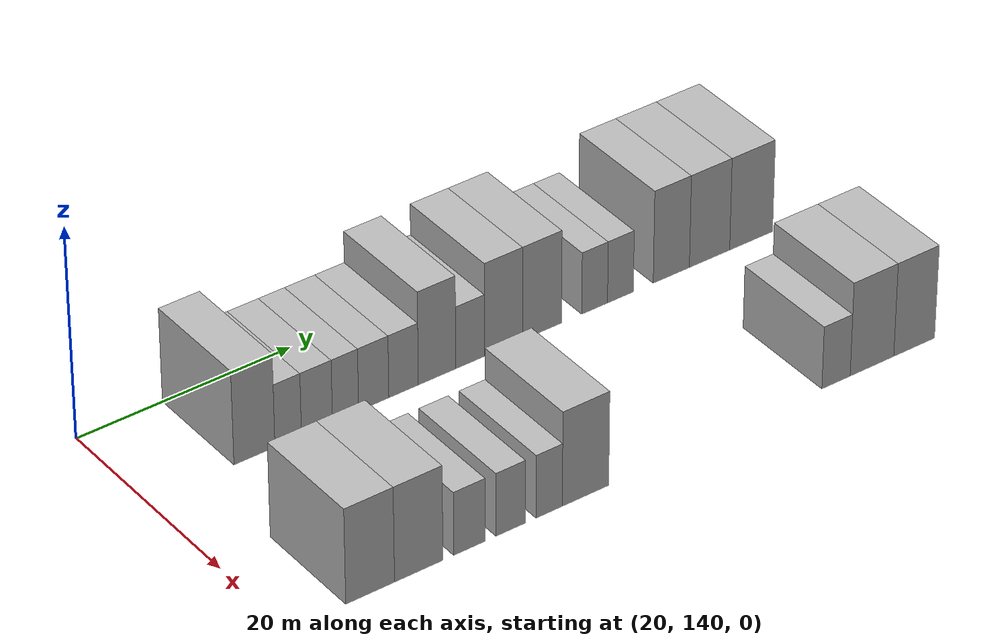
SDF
<sdf version="1.6">
 <world name="default">
  <model name="building_85">
   <static>1</static>
   <pose>25.0000 149.8586 0 0.000000 0.000000 0.000000</pose>
   <link name="link">
    <pose>0 0 4.50 0 0 0</pose>
    <collision name="collision"><geometry><box><size>10.0000 3.8070 9.0000</size></box></geometry></collision>
    <visual name="visual">
     <cast_shadows>0</cast_shadows>
     <geometry><box><size>10.0000 3.8070 9.0000</size></box></geometry>
     <material>
      <script>
       <uri>model://HANNAS_wall/materials/scripts</uri>
       <uri>model://HANNAS_wall/materials/textures</uri>
       <name>vrc/HANNAS_wall</name>
      </script>
     </material>
    </visual>
   </link>
  </model>
  <model name="building_86">
   <static>1</static>
   <pose>25.0000 153.0011 0 0.000000 0.000000 0.000000</pose>
   <link name="link">
    <pose>0 0 3.00 0 0 0</pose>
    <collision name="collision"><geometry><box><size>10.0000 2.4779 6.0000</size></box></geometry></collision>
    <visual name="visual">
     <cast_shadows>0</cast_shadows>
     <geometry><box><size>10.0000 2.4779 6.0000</size></box></geometry>
     <material>
      <script>
       <uri>model://HANNAS_wall/materials/scripts</uri>
       <uri>model://HANNAS_wall/materials/textures</uri>
       <name>vrc/HANNAS_wall</name>
      </script>
     </material>
    </visual>
   </link>
  </model>
  <model name="building_87">
   <static>1</static>
   <pose>25.0000 155.6982 0 0.000000 0.000000 0.000000</pose>
   <link name="link">
    <pose>0 0 3.00 0 0 0</pose>
    <collision name="collision"><geometry><box><size>10.0000 2.9162 6.0000</size></box></geometry></collision>
    <visual name="visual">
     <cast_shadows>0</cast_shadows>
     <geometry><box><size>10.0000 2.9162 6.0000</size></box></geometry>
     <material>
      <script>
       <uri>model://HANNAS_wall/materials/scripts</uri>
       <uri>model://HANNAS_wall/materials/textures</uri>
       <name>vrc/HANNAS_wall</name>
      </script>
     </material>
    </visual>
   </link>
  </model>
  <model name="building_88">
   <static>1</static>
   <pose>25.0000 158.3941 0 0.000000 0.000000 0.000000</pose>
   <link name="link">
    <pose>0 0 3.00 0 0 0</pose>
    <collision name="collision"><geometry><box><size>10.0000 2.4756 6.0000</size></box></geometry></collision>
    <visual name="visual">
     <cast_shadows>0</cast_shadows>
     <geometry><box><size>10.0000 2.4756 6.0000</size></box></geometry>
     <material>
      <script>
       <uri>model://HANNAS_wall/materials/scripts</uri>
       <uri>model://HANNAS_wall/materials/textures</uri>
       <name>vrc/HANNAS_wall</name>
      </script>
     </material>
    </visual>
   </link>
  </model>
  <model name="building_89">
   <static>1</static>
   <pose>25.0000 161.0663 0 0.000000 0.000000 0.000000</pose>
   <link name="link">
    <pose>0 0 3.00 0 0 0</pose>
    <collision name="collision"><geometry><box><size>10.0000 2.8687 6.0000</size></box></geometry></collision>
    <visual name="visual">
     <cast_shadows>0</cast_shadows>
     <geometry><box><size>10.0000 2.8687 6.0000</size></box></geometry>
     <material>
      <script>
       <uri>model://HANNAS_wall/materials/scripts</uri>
       <uri>model://HANNAS_wall/materials/textures</uri>
       <name>vrc/HANNAS_wall</name>
      </script>
     </material>
    </visual>
   </link>
  </model>
  <model name="building_90">
   <static>1</static>
   <pose>25.0000 163.9121 0 0.000000 0.000000 0.000000</pose>
   <link name="link">
    <pose>0 0 3.00 0 0 0</pose>
    <collision name="collision"><geometry><box><size>10.0000 2.8230 6.0000</size></box></geometry></collision>
    <visual name="visual">
     <cast_shadows>0</cast_shadows>
     <geometry><box><size>10.0000 2.8230 6.0000</size></box></geometry>
     <material>
      <script>
       <uri>model://HANNAS_wall/materials/scripts</uri>
       <uri>model://HANNAS_wall/materials/textures</uri>
       <name>vrc/HANNAS_wall</name>
      </script>
     </material>
    </visual>
   </link>
  </model>
  <model name="building_91">
   <static>1</static>
   <pose>25.0000 167.1286 0 0.000000 0.000000 0.000000</pose>
   <link name="link">
    <pose>0 0 4.50 0 0 0</pose>
    <collision name="collision"><geometry><box><size>10.0000 3.6099 9.0000</size></box></geometry></collision>
    <visual name="visual">
     <cast_shadows>0</cast_shadows>
     <geometry><box><size>10.0000 3.6099 9.0000</size></box></geometry>
     <material>
      <script>
       <uri>model://HANNAS_wall/materials/scripts</uri>
       <uri>model://HANNAS_wall/materials/textures</uri>
       <name>vrc/HANNAS_wall</name>
      </script>
     </material>
    </visual>
   </link>
  </model>
  <model name="building_92">
   <static>1</static>
   <pose>25.0000 170.3273 0 0.000000 0.000000 0.000000</pose>
   <link name="link">
    <pose>0 0 3.00 0 0 0</pose>
    <collision name="collision"><geometry><box><size>10.0000 2.7876 6.0000</size></box></geometry></collision>
    <visual name="visual">
     <cast_shadows>0</cast_shadows>
     <geometry><box><size>10.0000 2.7876 6.0000</size></box></geometry>
     <material>
      <script>
       <uri>model://HANNAS_wall/materials/scripts</uri>
       <uri>model://HANNAS_wall/materials/textures</uri>
       <name>vrc/HANNAS_wall</name>
      </script>
     </material>
    </visual>
   </link>
  </model>
  <model name="building_93">
   <static>1</static>
   <pose>25.0000 173.5699 0 0.000000 0.000000 0.000000</pose>
   <link name="link">
    <pose>0 0 4.50 0 0 0</pose>
    <collision name="collision"><geometry><box><size>10.0000 3.6975 9.0000</size></box></geometry></collision>
    <visual name="visual">
     <cast_shadows>0</cast_shadows>
     <geometry><box><size>10.0000 3.6975 9.0000</size></box></geometry>
     <material>
      <script>
       <uri>model://HANNAS_wall/materials/scripts</uri>
       <uri>model://HANNAS_wall/materials/textures</uri>
       <name>vrc/HANNAS_wall</name>
      </script>
     </material>
    </visual>
   </link>
  </model>
  <model name="building_94">
   <static>1</static>
   <pose>25.0000 177.3409 0 0.000000 0.000000 0.000000</pose>
   <link name="link">
    <pose>0 0 4.50 0 0 0</pose>
    <collision name="collision"><geometry><box><size>10.0000 3.8446 9.0000</size></box></geometry></collision>
    <visual name="visual">
     <cast_shadows>0</cast_shadows>
     <geometry><box><size>10.0000 3.8446 9.0000</size></box></geometry>
     <material>
      <script>
       <uri>model://HANNAS_wall/materials/scripts</uri>
       <uri>model://HANNAS_wall/materials/textures</uri>
       <name>vrc/HANNAS_wall</name>
      </script>
     </material>
    </visual>
   </link>
  </model>
  <model name="building_95">
   <static>1</static>
   <pose>25.0000 182.5454 0 0.000000 0.000000 0.000000</pose>
   <link name="link">
    <pose>0 0 3.00 0 0 0</pose>
    <collision name="collision"><geometry><box><size>10.0000 2.5645 6.0000</size></box></geometry></collision>
    <visual name="visual">
     <cast_shadows>0</cast_shadows>
     <geometry><box><size>10.0000 2.5645 6.0000</size></box></geometry>
     <material>
      <script>
       <uri>model://HANNAS_wall/materials/scripts</uri>
       <uri>model://HANNAS_wall/materials/textures</uri>
       <name>vrc/HANNAS_wall</name>
      </script>
     </material>
    </visual>
   </link>
  </model>
  <model name="building_96">
   <static>1</static>
   <pose>25.0000 185.1183 0 0.000000 0.000000 0.000000</pose>
   <link name="link">
    <pose>0 0 3.00 0 0 0</pose>
    <collision name="collision"><geometry><box><size>10.0000 2.5812 6.0000</size></box></geometry></collision>
    <visual name="visual">
     <cast_shadows>0</cast_shadows>
     <geometry><box><size>10.0000 2.5812 6.0000</size></box></geometry>
     <material>
      <script>
       <uri>model://HANNAS_wall/materials/scripts</uri>
       <uri>model://HANNAS_wall/materials/textures</uri>
       <name>vrc/HANNAS_wall</name>
      </script>
     </material>
    </visual>
   </link>
  </model>
  <model name="building_97">
   <static>1</static>
   <pose>25.0000 190.2369 0 0.000000 0.000000 0.000000</pose>
   <link name="link">
    <pose>0 0 4.50 0 0 0</pose>
    <collision name="collision"><geometry><box><size>10.0000 3.6561 9.0000</size></box></geometry></collision>
    <visual name="visual">
     <cast_shadows>0</cast_shadows>
     <geometry><box><size>10.0000 3.6561 9.0000</size></box></geometry>
     <material>
      <script>
       <uri>model://HANNAS_wall/materials/scripts</uri>
       <uri>model://HANNAS_wall/materials/textures</uri>
       <name>vrc/HANNAS_wall</name>
      </script>
     </material>
    </visual>
   </link>
  </model>
  <model name="building_98">
   <static>1</static>
   <pose>25.0000 194.1171 0 0.000000 0.000000 0.000000</pose>
   <link name="link">
    <pose>0 0 4.50 0 0 0</pose>
    <collision name="collision"><geometry><box><size>10.0000 4.1044 9.0000</size></box></geometry></collision>
    <visual name="visual">
     <cast_shadows>0</cast_shadows>
     <geometry><box><size>10.0000 4.1044 9.0000</size></box></geometry>
     <material>
      <script>
       <uri>model://HANNAS_wall/materials/scripts</uri>
       <uri>model://HANNAS_wall/materials/textures</uri>
       <name>vrc/HANNAS_wall</name>
      </script>
     </material>
    </visual>
   </link>
  </model>
  <model name="building_99">
   <static>1</static>
   <pose>25.0000 198.3697 0 0.000000 0.000000 0.000000</pose>
   <link name="link">
    <pose>0 0 4.50 0 0 0</pose>
    <collision name="collision"><geometry><box><size>10.0000 4.4010 9.0000</size></box></geometry></collision>
    <visual name="visual">
     <cast_shadows>0</cast_shadows>
     <geometry><box><size>10.0000 4.4010 9.0000</size></box></geometry>
     <material>
      <script>
       <uri>model://HANNAS_wall/materials/scripts</uri>
       <uri>model://HANNAS_wall/materials/textures</uri>
       <name>vrc/HANNAS_wall</name>
      </script>
     </material>
    </visual>
   </link>
  </model>
  <model name="building_184">
   <static>1</static>
   <pose>44.0000 147.4416 0 0.000000 0.000000 0.000000</pose>
   <link name="link">
    <pose>0 0 4.50 0 0 0</pose>
    <collision name="collision"><geometry><box><size>10.0000 4.4455 9.0000</size></box></geometry></collision>
    <visual name="visual">
     <cast_shadows>0</cast_shadows>
     <geometry><box><size>10.0000 4.4455 9.0000</size></box></geometry>
     <material>
      <script>
       <uri>model://HANNAS_wall/materials/scripts</uri>
       <uri>model://HANNAS_wall/materials/textures</uri>
       <name>vrc/HANNAS_wall</name>
      </script>
     </material>
    </visual>
   </link>
  </model>
  <model name="building_185">
   <static>1</static>
   <pose>44.0000 151.8899 0 0.000000 0.000000 0.000000</pose>
   <link name="link">
    <pose>0 0 4.50 0 0 0</pose>
    <collision name="collision"><geometry><box><size>10.0000 4.4511 9.0000</size></box></geometry></collision>
    <visual name="visual">
     <cast_shadows>0</cast_shadows>
     <geometry><box><size>10.0000 4.4511 9.0000</size></box></geometry>
     <material>
      <script>
       <uri>model://HANNAS_wall/materials/scripts</uri>
       <uri>model://HANNAS_wall/materials/textures</uri>
       <name>vrc/HANNAS_wall</name>
      </script>
     </material>
    </visual>
   </link>
  </model>
  <model name="building_186">
   <static>1</static>
   <pose>44.0000 156.5811 0 0.000000 0.000000 0.000000</pose>
   <link name="link">
    <pose>0 0 3.00 0 0 0</pose>
    <collision name="collision"><geometry><box><size>10.0000 2.9312 6.0000</size></box></geometry></collision>
    <visual name="visual">
     <cast_shadows>0</cast_shadows>
     <geometry><box><size>10.0000 2.9312 6.0000</size></box></geometry>
     <material>
      <script>
       <uri>model://HANNAS_wall/materials/scripts</uri>
       <uri>model://HANNAS_wall/materials/textures</uri>
       <name>vrc/HANNAS_wall</name>
      </script>
     </material>
    </visual>
   </link>
  </model>
  <model name="building_187">
   <static>1</static>
   <pose>44.0000 160.4248 0 0.000000 0.000000 0.000000</pose>
   <link name="link">
    <pose>0 0 3.00 0 0 0</pose>
    <collision name="collision"><geometry><box><size>10.0000 2.7562 6.0000</size></box></geometry></collision>
    <visual name="visual">
     <cast_shadows>0</cast_shadows>
     <geometry><box><size>10.0000 2.7562 6.0000</size></box></geometry>
     <material>
      <script>
       <uri>model://HANNAS_wall/materials/scripts</uri>
       <uri>model://HANNAS_wall/materials/textures</uri>
       <name>vrc/HANNAS_wall</name>
      </script>
     </material>
    </visual>
   </link>
  </model>
  <model name="building_188">
   <static>1</static>
   <pose>44.0000 164.0437 0 0.000000 0.000000 0.000000</pose>
   <link name="link">
    <pose>0 0 3.00 0 0 0</pose>
    <collision name="collision"><geometry><box><size>10.0000 2.4816 6.0000</size></box></geometry></collision>
    <visual name="visual">
     <cast_shadows>0</cast_shadows>
     <geometry><box><size>10.0000 2.4816 6.0000</size></box></geometry>
     <material>
      <script>
       <uri>model://HANNAS_wall/materials/scripts</uri>
       <uri>model://HANNAS_wall/materials/textures</uri>
       <name>vrc/HANNAS_wall</name>
      </script>
     </material>
    </visual>
   </link>
  </model>
  <model name="building_189">
   <static>1</static>
   <pose>44.0000 167.4894 0 0.000000 0.000000 0.000000</pose>
   <link name="link">
    <pose>0 0 4.50 0 0 0</pose>
    <collision name="collision"><geometry><box><size>10.0000 4.4099 9.0000</size></box></geometry></collision>
    <visual name="visual">
     <cast_shadows>0</cast_shadows>
     <geometry><box><size>10.0000 4.4099 9.0000</size></box></geometry>
     <material>
      <script>
       <uri>model://HANNAS_wall/materials/scripts</uri>
       <uri>model://HANNAS_wall/materials/textures</uri>
       <name>vrc/HANNAS_wall</name>
      </script>
     </material>
    </visual>
   </link>
  </model>
  <model name="building_190">
   <static>1</static>
   <pose>44.0000 191.9470 0 0.000000 0.000000 0.000000</pose>
   <link name="link">
    <pose>0 0 3.00 0 0 0</pose>
    <collision name="collision"><geometry><box><size>10.0000 2.8350 6.0000</size></box></geometry></collision>
    <visual name="visual">
     <cast_shadows>0</cast_shadows>
     <geometry><box><size>10.0000 2.8350 6.0000</size></box></geometry>
     <material>
      <script>
       <uri>model://HANNAS_wall/materials/scripts</uri>
       <uri>model://HANNAS_wall/materials/textures</uri>
       <name>vrc/HANNAS_wall</name>
      </script>
     </material>
    </visual>
   </link>
  </model>
  <model name="building_191">
   <static>1</static>
   <pose>44.0000 195.5683 0 0.000000 0.000000 0.000000</pose>
   <link name="link">
    <pose>0 0 4.50 0 0 0</pose>
    <collision name="collision"><geometry><box><size>10.0000 4.4076 9.0000</size></box></geometry></collision>
    <visual name="visual">
     <cast_shadows>0</cast_shadows>
     <geometry><box><size>10.0000 4.4076 9.0000</size></box></geometry>
     <material>
      <script>
       <uri>model://HANNAS_wall/materials/scripts</uri>
       <uri>model://HANNAS_wall/materials/textures</uri>
       <name>vrc/HANNAS_wall</name>
      </script>
     </material>
    </visual>
   </link>
  </model>
  <model name="building_192">
   <static>1</static>
   <pose>44.0000 199.8457 0 0.000000 0.000000 0.000000</pose>
   <link name="link">
    <pose>0 0 4.50 0 0 0</pose>
    <collision name="collision"><geometry><box><size>10.0000 4.1472 9.0000</size></box></geometry></collision>
    <visual name="visual">
     <cast_shadows>0</cast_shadows>
     <geometry><box><size>10.0000 4.1472 9.0000</size></box></geometry>
     <material>
      <script>
       <uri>model://HANNAS_wall/materials/scripts</uri>
       <uri>model://HANNAS_wall/materials/textures</uri>
       <name>vrc/HANNAS_wall</name>
      </script>
     </material>
    </visual>
   </link>
  </model>
 </world>
</sdf>
